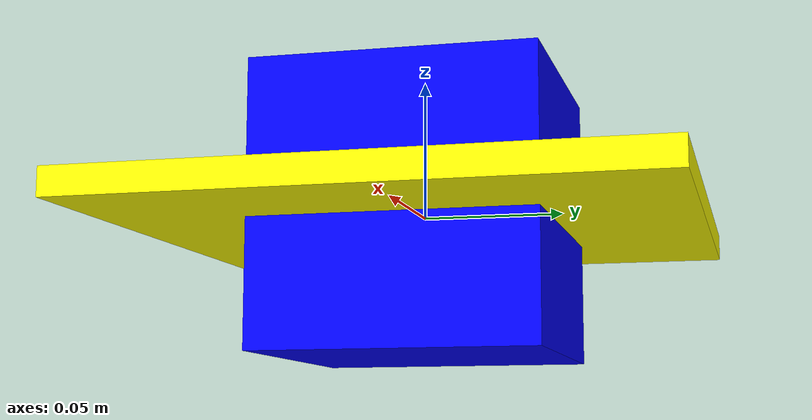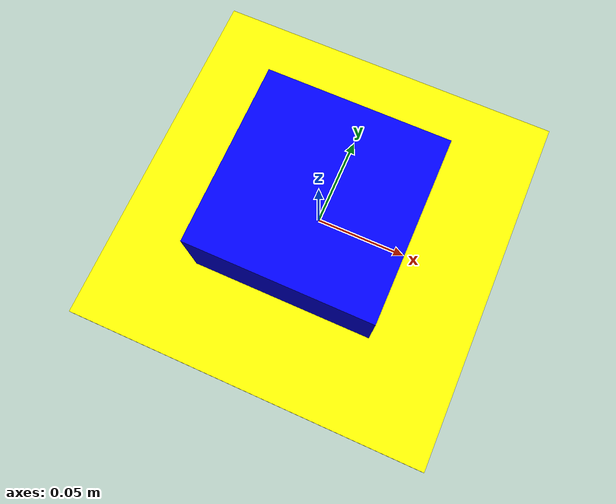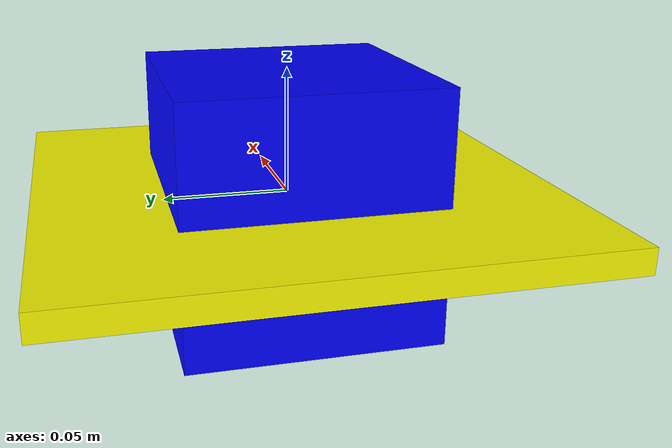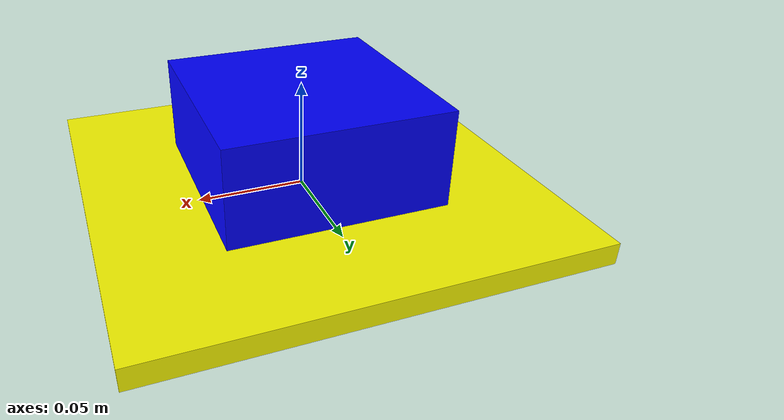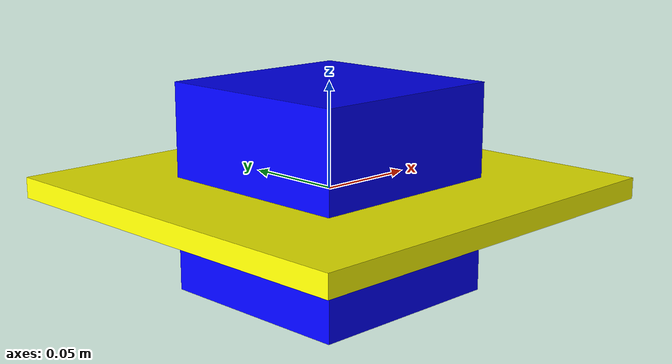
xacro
<?xml version="1.0"?>
<robot name="test_1">

  <link name="base">
    <visual>
      <geometry>
        <box size="0.2 0.2 0.01"/>
      </geometry>
      <origin xyz="0 0 0" rpy="0 0 0"/>
      <material name="yellow">
        <color rgba="1 1 0 1"/>
      </material>
    </visual>
  </link>

  <joint name="base_joint" type="fixed">
    <parent link="base"/>
    <child link="BOX"/>
  </joint>

  <link name="BOX">
    <visual>
      <geometry>
        <box size="0.1 0.1 0.1"/>
      </geometry>
      <origin xyz="0 0 0" rpy="0 0 0"/>
      <material name="red">
        <color rgba="0 0 1 1"/>
      </material>
    </visual>
  </link>
</robot>
